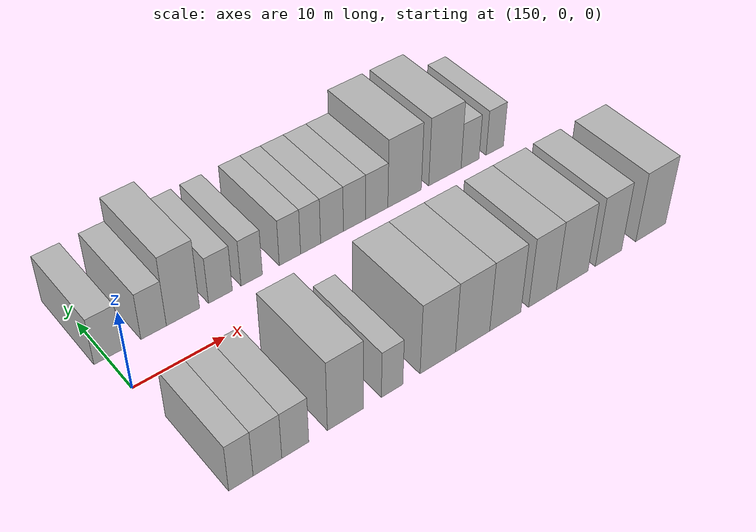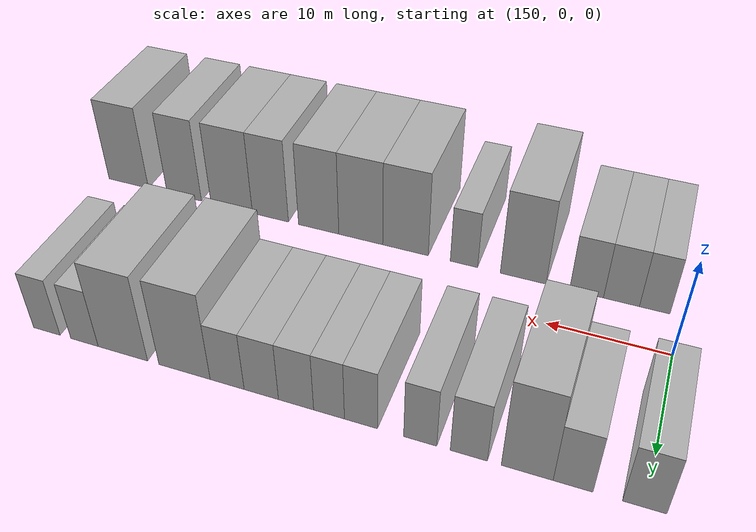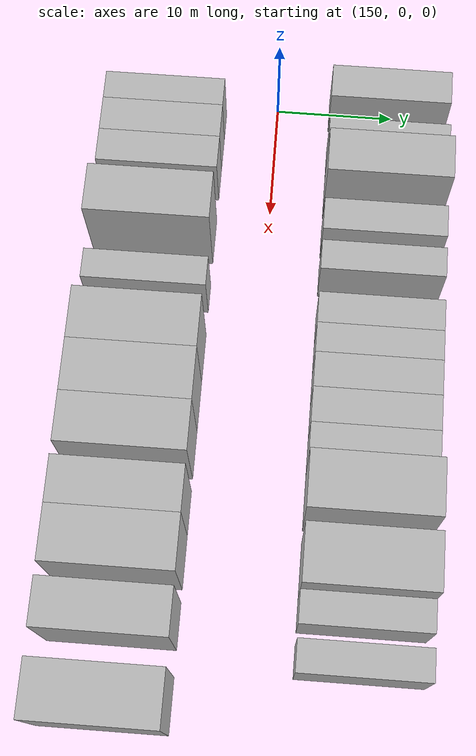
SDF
<sdf version="1.6">
 <world name="default">
  <model name="building_40">
   <static>1</static>
   <pose>150.1584 9.5000 0 0.000000 0.000000 1.570796</pose>
   <link name="link">
    <pose>0 0 3.00 0 0 0</pose>
    <collision name="collision"><geometry><box><size>10.0000 2.9550 6.0000</size></box></geometry></collision>
    <visual name="visual">
     <cast_shadows>0</cast_shadows>
     <geometry><box><size>10.0000 2.9550 6.0000</size></box></geometry>
     <material>
      <script>
       <uri>model://HANNAS_wall/materials/scripts</uri>
       <uri>model://HANNAS_wall/materials/textures</uri>
       <name>vrc/HANNAS_wall</name>
      </script>
     </material>
    </visual>
   </link>
  </model>
  <model name="building_41">
   <static>1</static>
   <pose>155.0133 9.5000 0 0.000000 0.000000 1.570796</pose>
   <link name="link">
    <pose>0 0 3.00 0 0 0</pose>
    <collision name="collision"><geometry><box><size>10.0000 2.7546 6.0000</size></box></geometry></collision>
    <visual name="visual">
     <cast_shadows>0</cast_shadows>
     <geometry><box><size>10.0000 2.7546 6.0000</size></box></geometry>
     <material>
      <script>
       <uri>model://HANNAS_wall/materials/scripts</uri>
       <uri>model://HANNAS_wall/materials/textures</uri>
       <name>vrc/HANNAS_wall</name>
      </script>
     </material>
    </visual>
   </link>
  </model>
  <model name="building_42">
   <static>1</static>
   <pose>158.2320 9.5000 0 0.000000 0.000000 1.570796</pose>
   <link name="link">
    <pose>0 0 4.50 0 0 0</pose>
    <collision name="collision"><geometry><box><size>10.0000 3.6830 9.0000</size></box></geometry></collision>
    <visual name="visual">
     <cast_shadows>0</cast_shadows>
     <geometry><box><size>10.0000 3.6830 9.0000</size></box></geometry>
     <material>
      <script>
       <uri>model://HANNAS_wall/materials/scripts</uri>
       <uri>model://HANNAS_wall/materials/textures</uri>
       <name>vrc/HANNAS_wall</name>
      </script>
     </material>
    </visual>
   </link>
  </model>
  <model name="building_43">
   <static>1</static>
   <pose>162.4334 9.5000 0 0.000000 0.000000 1.570796</pose>
   <link name="link">
    <pose>0 0 3.00 0 0 0</pose>
    <collision name="collision"><geometry><box><size>10.0000 2.7199 6.0000</size></box></geometry></collision>
    <visual name="visual">
     <cast_shadows>0</cast_shadows>
     <geometry><box><size>10.0000 2.7199 6.0000</size></box></geometry>
     <material>
      <script>
       <uri>model://HANNAS_wall/materials/scripts</uri>
       <uri>model://HANNAS_wall/materials/textures</uri>
       <name>vrc/HANNAS_wall</name>
      </script>
     </material>
    </visual>
   </link>
  </model>
  <model name="building_44">
   <static>1</static>
   <pose>166.0400 9.5000 0 0.000000 0.000000 1.570796</pose>
   <link name="link">
    <pose>0 0 3.00 0 0 0</pose>
    <collision name="collision"><geometry><box><size>10.0000 2.4934 6.0000</size></box></geometry></collision>
    <visual name="visual">
     <cast_shadows>0</cast_shadows>
     <geometry><box><size>10.0000 2.4934 6.0000</size></box></geometry>
     <material>
      <script>
       <uri>model://HANNAS_wall/materials/scripts</uri>
       <uri>model://HANNAS_wall/materials/textures</uri>
       <name>vrc/HANNAS_wall</name>
      </script>
     </material>
    </visual>
   </link>
  </model>
  <model name="building_45">
   <static>1</static>
   <pose>170.5733 9.5000 0 0.000000 0.000000 1.570796</pose>
   <link name="link">
    <pose>0 0 3.00 0 0 0</pose>
    <collision name="collision"><geometry><box><size>10.0000 2.5731 6.0000</size></box></geometry></collision>
    <visual name="visual">
     <cast_shadows>0</cast_shadows>
     <geometry><box><size>10.0000 2.5731 6.0000</size></box></geometry>
     <material>
      <script>
       <uri>model://HANNAS_wall/materials/scripts</uri>
       <uri>model://HANNAS_wall/materials/textures</uri>
       <name>vrc/HANNAS_wall</name>
      </script>
     </material>
    </visual>
   </link>
  </model>
  <model name="building_46">
   <static>1</static>
   <pose>173.0829 9.5000 0 0.000000 0.000000 1.570796</pose>
   <link name="link">
    <pose>0 0 3.00 0 0 0</pose>
    <collision name="collision"><geometry><box><size>10.0000 2.4460 6.0000</size></box></geometry></collision>
    <visual name="visual">
     <cast_shadows>0</cast_shadows>
     <geometry><box><size>10.0000 2.4460 6.0000</size></box></geometry>
     <material>
      <script>
       <uri>model://HANNAS_wall/materials/scripts</uri>
       <uri>model://HANNAS_wall/materials/textures</uri>
       <name>vrc/HANNAS_wall</name>
      </script>
     </material>
    </visual>
   </link>
  </model>
  <model name="building_47">
   <static>1</static>
   <pose>175.7271 9.5000 0 0.000000 0.000000 1.570796</pose>
   <link name="link">
    <pose>0 0 3.00 0 0 0</pose>
    <collision name="collision"><geometry><box><size>10.0000 2.8425 6.0000</size></box></geometry></collision>
    <visual name="visual">
     <cast_shadows>0</cast_shadows>
     <geometry><box><size>10.0000 2.8425 6.0000</size></box></geometry>
     <material>
      <script>
       <uri>model://HANNAS_wall/materials/scripts</uri>
       <uri>model://HANNAS_wall/materials/textures</uri>
       <name>vrc/HANNAS_wall</name>
      </script>
     </material>
    </visual>
   </link>
  </model>
  <model name="building_48">
   <static>1</static>
   <pose>178.5657 9.5000 0 0.000000 0.000000 1.570796</pose>
   <link name="link">
    <pose>0 0 3.00 0 0 0</pose>
    <collision name="collision"><geometry><box><size>10.0000 2.8347 6.0000</size></box></geometry></collision>
    <visual name="visual">
     <cast_shadows>0</cast_shadows>
     <geometry><box><size>10.0000 2.8347 6.0000</size></box></geometry>
     <material>
      <script>
       <uri>model://HANNAS_wall/materials/scripts</uri>
       <uri>model://HANNAS_wall/materials/textures</uri>
       <name>vrc/HANNAS_wall</name>
      </script>
     </material>
    </visual>
   </link>
  </model>
  <model name="building_49">
   <static>1</static>
   <pose>181.4146 9.5000 0 0.000000 0.000000 1.570796</pose>
   <link name="link">
    <pose>0 0 3.00 0 0 0</pose>
    <collision name="collision"><geometry><box><size>10.0000 2.8631 6.0000</size></box></geometry></collision>
    <visual name="visual">
     <cast_shadows>0</cast_shadows>
     <geometry><box><size>10.0000 2.8631 6.0000</size></box></geometry>
     <material>
      <script>
       <uri>model://HANNAS_wall/materials/scripts</uri>
       <uri>model://HANNAS_wall/materials/textures</uri>
       <name>vrc/HANNAS_wall</name>
      </script>
     </material>
    </visual>
   </link>
  </model>
  <model name="building_50">
   <static>1</static>
   <pose>185.0627 9.5000 0 0.000000 0.000000 1.570796</pose>
   <link name="link">
    <pose>0 0 4.50 0 0 0</pose>
    <collision name="collision"><geometry><box><size>10.0000 4.4331 9.0000</size></box></geometry></collision>
    <visual name="visual">
     <cast_shadows>0</cast_shadows>
     <geometry><box><size>10.0000 4.4331 9.0000</size></box></geometry>
     <material>
      <script>
       <uri>model://HANNAS_wall/materials/scripts</uri>
       <uri>model://HANNAS_wall/materials/textures</uri>
       <name>vrc/HANNAS_wall</name>
      </script>
     </material>
    </visual>
   </link>
  </model>
  <model name="building_51">
   <static>1</static>
   <pose>190.4981 9.5000 0 0.000000 0.000000 1.570796</pose>
   <link name="link">
    <pose>0 0 4.50 0 0 0</pose>
    <collision name="collision"><geometry><box><size>10.0000 4.4377 9.0000</size></box></geometry></collision>
    <visual name="visual">
     <cast_shadows>0</cast_shadows>
     <geometry><box><size>10.0000 4.4377 9.0000</size></box></geometry>
     <material>
      <script>
       <uri>model://HANNAS_wall/materials/scripts</uri>
       <uri>model://HANNAS_wall/materials/textures</uri>
       <name>vrc/HANNAS_wall</name>
      </script>
     </material>
    </visual>
   </link>
  </model>
  <model name="building_52">
   <static>1</static>
   <pose>193.9771 9.5000 0 0.000000 0.000000 1.570796</pose>
   <link name="link">
    <pose>0 0 3.00 0 0 0</pose>
    <collision name="collision"><geometry><box><size>10.0000 2.5204 6.0000</size></box></geometry></collision>
    <visual name="visual">
     <cast_shadows>0</cast_shadows>
     <geometry><box><size>10.0000 2.5204 6.0000</size></box></geometry>
     <material>
      <script>
       <uri>model://HANNAS_wall/materials/scripts</uri>
       <uri>model://HANNAS_wall/materials/textures</uri>
       <name>vrc/HANNAS_wall</name>
      </script>
     </material>
    </visual>
   </link>
  </model>
  <model name="building_53">
   <static>1</static>
   <pose>197.4788 9.5000 0 0.000000 0.000000 1.570796</pose>
   <link name="link">
    <pose>0 0 3.00 0 0 0</pose>
    <collision name="collision"><geometry><box><size>10.0000 2.4830 6.0000</size></box></geometry></collision>
    <visual name="visual">
     <cast_shadows>0</cast_shadows>
     <geometry><box><size>10.0000 2.4830 6.0000</size></box></geometry>
     <material>
      <script>
       <uri>model://HANNAS_wall/materials/scripts</uri>
       <uri>model://HANNAS_wall/materials/textures</uri>
       <name>vrc/HANNAS_wall</name>
      </script>
     </material>
    </visual>
   </link>
  </model>
  <model name="building_90">
   <static>1</static>
   <pose>151.9472 -9.5000 0 0.000000 0.000000 1.570796</pose>
   <link name="link">
    <pose>0 0 3.00 0 0 0</pose>
    <collision name="collision"><geometry><box><size>10.0000 2.4738 6.0000</size></box></geometry></collision>
    <visual name="visual">
     <cast_shadows>0</cast_shadows>
     <geometry><box><size>10.0000 2.4738 6.0000</size></box></geometry>
     <material>
      <script>
       <uri>model://HANNAS_wall/materials/scripts</uri>
       <uri>model://HANNAS_wall/materials/textures</uri>
       <name>vrc/HANNAS_wall</name>
      </script>
     </material>
    </visual>
   </link>
  </model>
  <model name="building_91">
   <static>1</static>
   <pose>154.6646 -9.5000 0 0.000000 0.000000 1.570796</pose>
   <link name="link">
    <pose>0 0 3.00 0 0 0</pose>
    <collision name="collision"><geometry><box><size>10.0000 2.9609 6.0000</size></box></geometry></collision>
    <visual name="visual">
     <cast_shadows>0</cast_shadows>
     <geometry><box><size>10.0000 2.9609 6.0000</size></box></geometry>
     <material>
      <script>
       <uri>model://HANNAS_wall/materials/scripts</uri>
       <uri>model://HANNAS_wall/materials/textures</uri>
       <name>vrc/HANNAS_wall</name>
      </script>
     </material>
    </visual>
   </link>
  </model>
  <model name="building_92">
   <static>1</static>
   <pose>157.5664 -9.5000 0 0.000000 0.000000 1.570796</pose>
   <link name="link">
    <pose>0 0 3.00 0 0 0</pose>
    <collision name="collision"><geometry><box><size>10.0000 2.8425 6.0000</size></box></geometry></collision>
    <visual name="visual">
     <cast_shadows>0</cast_shadows>
     <geometry><box><size>10.0000 2.8425 6.0000</size></box></geometry>
     <material>
      <script>
       <uri>model://HANNAS_wall/materials/scripts</uri>
       <uri>model://HANNAS_wall/materials/textures</uri>
       <name>vrc/HANNAS_wall</name>
      </script>
     </material>
    </visual>
   </link>
  </model>
  <model name="building_93">
   <static>1</static>
   <pose>162.9780 -9.5000 0 0.000000 0.000000 1.570796</pose>
   <link name="link">
    <pose>0 0 4.50 0 0 0</pose>
    <collision name="collision"><geometry><box><size>10.0000 3.9807 9.0000</size></box></geometry></collision>
    <visual name="visual">
     <cast_shadows>0</cast_shadows>
     <geometry><box><size>10.0000 3.9807 9.0000</size></box></geometry>
     <material>
      <script>
       <uri>model://HANNAS_wall/materials/scripts</uri>
       <uri>model://HANNAS_wall/materials/textures</uri>
       <name>vrc/HANNAS_wall</name>
      </script>
     </material>
    </visual>
   </link>
  </model>
  <model name="building_94">
   <static>1</static>
   <pose>168.1947 -9.5000 0 0.000000 0.000000 1.570796</pose>
   <link name="link">
    <pose>0 0 3.00 0 0 0</pose>
    <collision name="collision"><geometry><box><size>10.0000 2.4528 6.0000</size></box></geometry></collision>
    <visual name="visual">
     <cast_shadows>0</cast_shadows>
     <geometry><box><size>10.0000 2.4528 6.0000</size></box></geometry>
     <material>
      <script>
       <uri>model://HANNAS_wall/materials/scripts</uri>
       <uri>model://HANNAS_wall/materials/textures</uri>
       <name>vrc/HANNAS_wall</name>
      </script>
     </material>
    </visual>
   </link>
  </model>
  <model name="building_95">
   <static>1</static>
   <pose>173.5322 -9.5000 0 0.000000 0.000000 1.570796</pose>
   <link name="link">
    <pose>0 0 4.50 0 0 0</pose>
    <collision name="collision"><geometry><box><size>10.0000 4.2222 9.0000</size></box></geometry></collision>
    <visual name="visual">
     <cast_shadows>0</cast_shadows>
     <geometry><box><size>10.0000 4.2222 9.0000</size></box></geometry>
     <material>
      <script>
       <uri>model://HANNAS_wall/materials/scripts</uri>
       <uri>model://HANNAS_wall/materials/textures</uri>
       <name>vrc/HANNAS_wall</name>
      </script>
     </material>
    </visual>
   </link>
  </model>
  <model name="building_96">
   <static>1</static>
   <pose>177.7304 -9.5000 0 0.000000 0.000000 1.570796</pose>
   <link name="link">
    <pose>0 0 4.50 0 0 0</pose>
    <collision name="collision"><geometry><box><size>10.0000 4.1743 9.0000</size></box></geometry></collision>
    <visual name="visual">
     <cast_shadows>0</cast_shadows>
     <geometry><box><size>10.0000 4.1743 9.0000</size></box></geometry>
     <material>
      <script>
       <uri>model://HANNAS_wall/materials/scripts</uri>
       <uri>model://HANNAS_wall/materials/textures</uri>
       <name>vrc/HANNAS_wall</name>
      </script>
     </material>
    </visual>
   </link>
  </model>
  <model name="building_97">
   <static>1</static>
   <pose>181.7821 -9.5000 0 0.000000 0.000000 1.570796</pose>
   <link name="link">
    <pose>0 0 4.50 0 0 0</pose>
    <collision name="collision"><geometry><box><size>10.0000 3.9290 9.0000</size></box></geometry></collision>
    <visual name="visual">
     <cast_shadows>0</cast_shadows>
     <geometry><box><size>10.0000 3.9290 9.0000</size></box></geometry>
     <material>
      <script>
       <uri>model://HANNAS_wall/materials/scripts</uri>
       <uri>model://HANNAS_wall/materials/textures</uri>
       <name>vrc/HANNAS_wall</name>
      </script>
     </material>
    </visual>
   </link>
  </model>
  <model name="building_98">
   <static>1</static>
   <pose>186.5526 -9.5000 0 0.000000 0.000000 1.570796</pose>
   <link name="link">
    <pose>0 0 4.50 0 0 0</pose>
    <collision name="collision"><geometry><box><size>10.0000 3.6121 9.0000</size></box></geometry></collision>
    <visual name="visual">
     <cast_shadows>0</cast_shadows>
     <geometry><box><size>10.0000 3.6121 9.0000</size></box></geometry>
     <material>
      <script>
       <uri>model://HANNAS_wall/materials/scripts</uri>
       <uri>model://HANNAS_wall/materials/textures</uri>
       <name>vrc/HANNAS_wall</name>
      </script>
     </material>
    </visual>
   </link>
  </model>
  <model name="building_99">
   <static>1</static>
   <pose>190.4813 -9.5000 0 0.000000 0.000000 1.570796</pose>
   <link name="link">
    <pose>0 0 4.50 0 0 0</pose>
    <collision name="collision"><geometry><box><size>10.0000 4.2452 9.0000</size></box></geometry></collision>
    <visual name="visual">
     <cast_shadows>0</cast_shadows>
     <geometry><box><size>10.0000 4.2452 9.0000</size></box></geometry>
     <material>
      <script>
       <uri>model://HANNAS_wall/materials/scripts</uri>
       <uri>model://HANNAS_wall/materials/textures</uri>
       <name>vrc/HANNAS_wall</name>
      </script>
     </material>
    </visual>
   </link>
  </model>
  <model name="building_100">
   <static>1</static>
   <pose>195.4216 -9.5000 0 0.000000 0.000000 1.570796</pose>
   <link name="link">
    <pose>0 0 4.50 0 0 0</pose>
    <collision name="collision"><geometry><box><size>10.0000 3.6355 9.0000</size></box></geometry></collision>
    <visual name="visual">
     <cast_shadows>0</cast_shadows>
     <geometry><box><size>10.0000 3.6355 9.0000</size></box></geometry>
     <material>
      <script>
       <uri>model://HANNAS_wall/materials/scripts</uri>
       <uri>model://HANNAS_wall/materials/textures</uri>
       <name>vrc/HANNAS_wall</name>
      </script>
     </material>
    </visual>
   </link>
  </model>
  <model name="building_101">
   <static>1</static>
   <pose>201.3853 -9.5000 0 0.000000 0.000000 1.570796</pose>
   <link name="link">
    <pose>0 0 4.50 0 0 0</pose>
    <collision name="collision"><geometry><box><size>10.0000 4.2917 9.0000</size></box></geometry></collision>
    <visual name="visual">
     <cast_shadows>0</cast_shadows>
     <geometry><box><size>10.0000 4.2917 9.0000</size></box></geometry>
     <material>
      <script>
       <uri>model://HANNAS_wall/materials/scripts</uri>
       <uri>model://HANNAS_wall/materials/textures</uri>
       <name>vrc/HANNAS_wall</name>
      </script>
     </material>
    </visual>
   </link>
  </model>
 </world>
</sdf>
